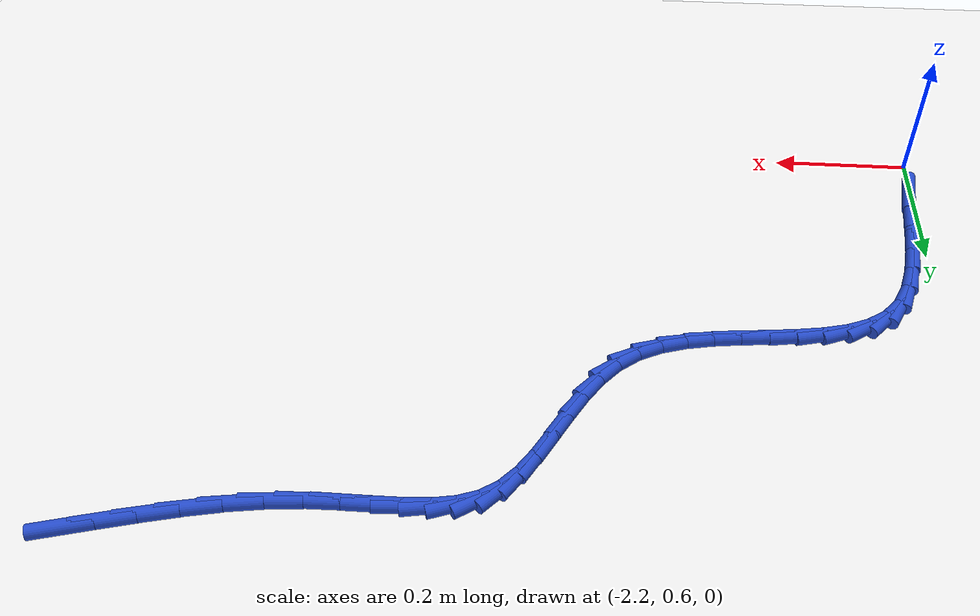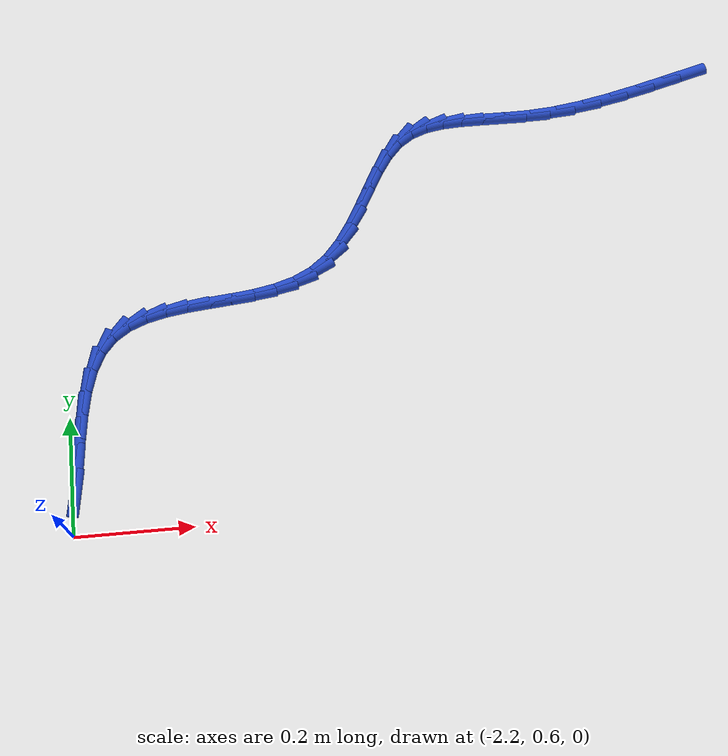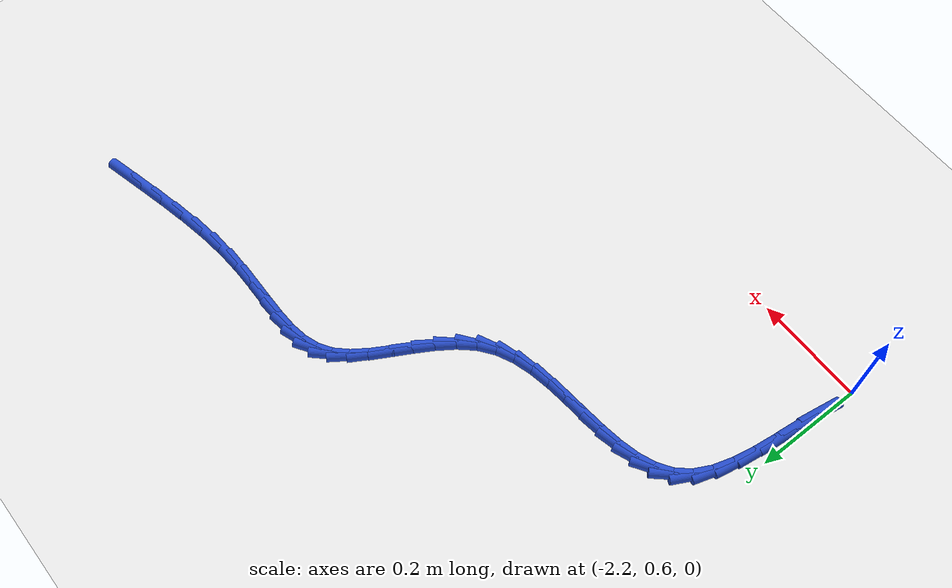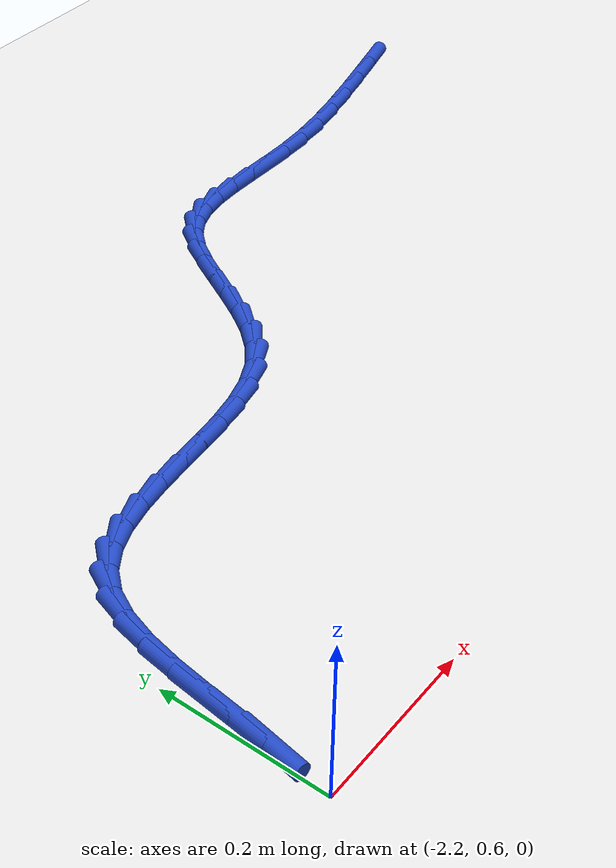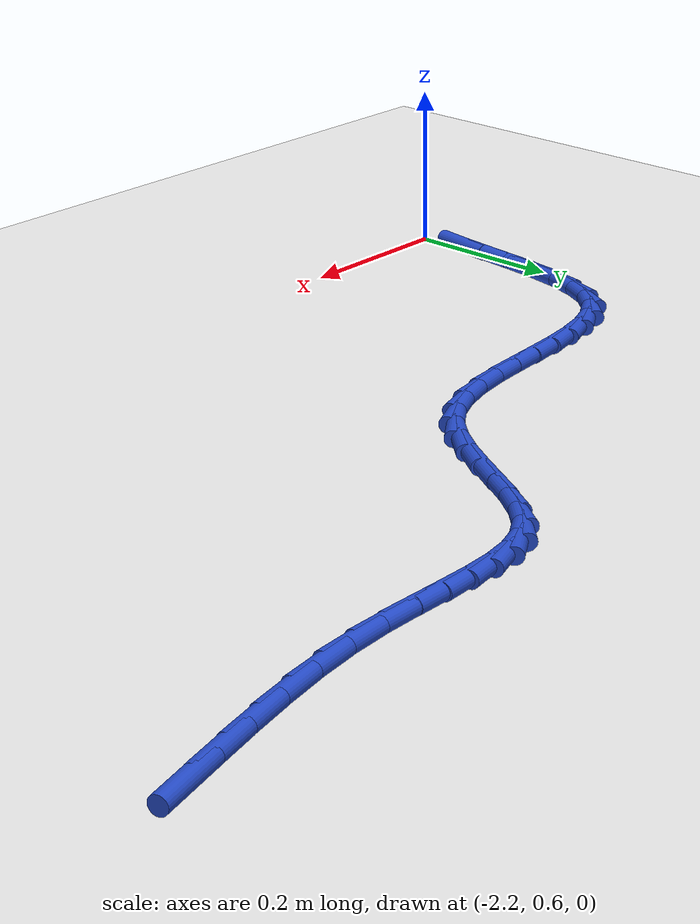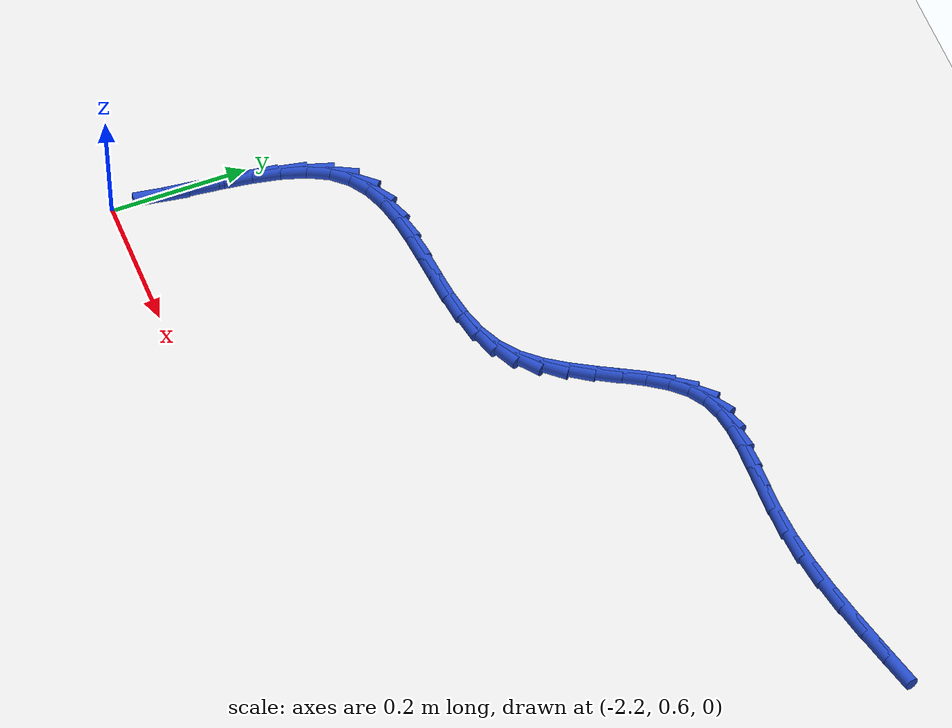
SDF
<sdf version="1.6">
 <world name="default">
  <model name="ground_plane">
   <static>1</static>
   <link name="link">
    <collision name="collision">
     <geometry><plane><normal>0 0 1</normal><size>100 100</size></plane></geometry>
     <surface><friction><ode><mu>100</mu><mu2>50</mu2></ode></friction></surface>
    </collision>
    <visual name="visual">
     <cast_shadows>0</cast_shadows>
     <geometry><plane><normal>0 0 1</normal><size>100 100</size></plane></geometry>
     <material>
      <script><uri>file://media/materials/scripts/gazebo.material</uri><name>Gazebo/WhiteGlow</name></script>
     </material>
    </visual>
   </link>
  </model>
  <model name="line">
   <link name="link_57">
    <pose>-1.0955781137871012 1.326104116847567 0.01 0 1.57 0.2501907083706787</pose>
    <collision name="collision">
     <geometry><cylinder><radius>0.01</radius><length>0.08</length></cylinder></geometry>
    </collision>
    <visual name="visual">
     <material>
      <script><name>Gazebo/Blue</name><uri>file://media/materials/scripts/gazebo.material</uri></script>
     </material>
     <geometry><cylinder><radius>0.01</radius><length>0.08</length></cylinder></geometry>
    </visual>
   </link>
   <link name="link_58">
    <pose>-1.1427759660105758 1.3140429382284595 0.01 0 1.57 0.24167244742331714</pose>
    <collision name="collision">
     <geometry><cylinder><radius>0.01</radius><length>0.08</length></cylinder></geometry>
    </collision>
    <visual name="visual">
     <material>
      <script><name>Gazebo/Blue</name><uri>file://media/materials/scripts/gazebo.material</uri></script>
     </material>
     <geometry><cylinder><radius>0.01</radius><length>0.08</length></cylinder></geometry>
    </visual>
   </link>
   <link name="link_59">
    <pose>-1.1913607355545226 1.3020672767218873 0.01 0 1.57 0.22050081717408146</pose>
    <collision name="collision">
     <geometry><cylinder><radius>0.01</radius><length>0.08</length></cylinder></geometry>
    </collision>
    <visual name="visual">
     <material>
      <script><name>Gazebo/Blue</name><uri>file://media/materials/scripts/gazebo.material</uri></script>
     </material>
     <geometry><cylinder><radius>0.01</radius><length>0.08</length></cylinder></geometry>
    </visual>
   </link>
   <link name="link_60">
    <pose>-1.2403435751611183 1.291088001419349 0.01 0 1.57 0.18531817152036642</pose>
    <collision name="collision">
     <geometry><cylinder><radius>0.01</radius><length>0.08</length></cylinder></geometry>
    </collision>
    <visual name="visual">
     <material>
      <script><name>Gazebo/Blue</name><uri>file://media/materials/scripts/gazebo.material</uri></script>
     </material>
     <geometry><cylinder><radius>0.01</radius><length>0.08</length></cylinder></geometry>
    </visual>
   </link>
   <link name="link_61">
    <pose>-1.288735637572541 1.2820159814123426 0.01 0 1.57 0.1328083670905106</pose>
    <collision name="collision">
     <geometry><cylinder><radius>0.01</radius><length>0.08</length></cylinder></geometry>
    </collision>
    <visual name="visual">
     <material>
      <script><name>Gazebo/Blue</name><uri>file://media/materials/scripts/gazebo.material</uri></script>
     </material>
     <geometry><cylinder><radius>0.01</radius><length>0.08</length></cylinder></geometry>
    </visual>
   </link>
   <link name="link_62">
    <pose>-1.3355480755309672 1.2757620857923657 0.01 0 1.57 0.06440131818322936</pose>
    <collision name="collision">
     <geometry><cylinder><radius>0.01</radius><length>0.08</length></cylinder></geometry>
    </collision>
    <visual name="visual">
     <material>
      <script><name>Gazebo/Blue</name><uri>file://media/materials/scripts/gazebo.material</uri></script>
     </material>
     <geometry><cylinder><radius>0.01</radius><length>0.08</length></cylinder></geometry>
    </visual>
   </link>
   <link name="link_63">
    <pose>-1.379924092855706 1.2729002541758936 0.01 0 1.57 0.010593005569473775</pose>
    <collision name="collision">
     <geometry><cylinder><radius>0.01</radius><length>0.08</length></cylinder></geometry>
    </collision>
    <visual name="visual">
     <material>
      <script><name>Gazebo/Blue</name><uri>file://media/materials/scripts/gazebo.material</uri></script>
     </material>
     <geometry><cylinder><radius>0.01</radius><length>0.08</length></cylinder></geometry>
    </visual>
   </link>
   <link name="link_64">
    <pose>-1.4216127296190673 1.2724586296958642 0.01 0 1.57 -0.01448078470729559</pose>
    <collision name="collision">
     <geometry><cylinder><radius>0.01</radius><length>0.08</length></cylinder></geometry>
    </collision>
    <visual name="visual">
     <material>
      <script><name>Gazebo/Blue</name><uri>file://media/materials/scripts/gazebo.material</uri></script>
     </material>
     <geometry><cylinder><radius>0.01</radius><length>0.08</length></cylinder></geometry>
    </visual>
   </link>
   <link name="link_65">
    <pose>-1.4605366632716323 1.2730223182001337 0.01 0 1.57 -0.0042699918529151525</pose>
    <collision name="collision">
     <geometry><cylinder><radius>0.01</radius><length>0.08</length></cylinder></geometry>
    </collision>
    <visual name="visual">
     <material>
      <script><name>Gazebo/Blue</name><uri>file://media/materials/scripts/gazebo.material</uri></script>
     </material>
     <geometry><cylinder><radius>0.01</radius><length>0.08</length></cylinder></geometry>
    </visual>
   </link>
   <link name="link_66">
    <pose>-1.4966185857201906 1.2731763886514078 0.01 0 1.57 0.05032982186870994</pose>
    <collision name="collision">
     <geometry><cylinder><radius>0.01</radius><length>0.08</length></cylinder></geometry>
    </collision>
    <visual name="visual">
     <material>
      <script><name>Gazebo/Blue</name><uri>file://media/materials/scripts/gazebo.material</uri></script>
     </material>
     <geometry><cylinder><radius>0.01</radius><length>0.08</length></cylinder></geometry>
    </visual>
   </link>
   <link name="link_67">
    <pose>-1.5297811888715336 1.2715059100123953 0.01 0 1.57 0.1613498733237581</pose>
    <collision name="collision">
     <geometry><cylinder><radius>0.01</radius><length>0.08</length></cylinder></geometry>
    </collision>
    <visual name="visual">
     <material>
      <script><name>Gazebo/Blue</name><uri>file://media/materials/scripts/gazebo.material</uri></script>
     </material>
     <geometry><cylinder><radius>0.01</radius><length>0.08</length></cylinder></geometry>
    </visual>
   </link>
   <link name="link_68">
    <pose>-1.5599471646324496 1.2665959512458016 0.01 0 1.57 0.33937379429327746</pose>
    <collision name="collision">
     <geometry><cylinder><radius>0.01</radius><length>0.08</length></cylinder></geometry>
    </collision>
    <visual name="visual">
     <material>
      <script><name>Gazebo/Blue</name><uri>file://media/materials/scripts/gazebo.material</uri></script>
     </material>
     <geometry><cylinder><radius>0.01</radius><length>0.08</length></cylinder></geometry>
    </visual>
   </link>
   <link name="link_69">
    <pose>-1.587039204909731 1.2570315813143356 0.01 0 1.57 0.5784412563058767</pose>
    <collision name="collision">
     <geometry><cylinder><radius>0.01</radius><length>0.08</length></cylinder></geometry>
    </collision>
    <visual name="visual">
     <material>
      <script><name>Gazebo/Blue</name><uri>file://media/materials/scripts/gazebo.material</uri></script>
     </material>
     <geometry><cylinder><radius>0.01</radius><length>0.08</length></cylinder></geometry>
    </visual>
   </link>
   <link name="link_70">
    <pose>-1.6109804791615945 1.2413992964644953 0.01 0 1.57 0.8165259031302108</pose>
    <collision name="collision">
     <geometry><cylinder><radius>0.01</radius><length>0.08</length></cylinder></geometry>
    </collision>
    <visual name="visual">
     <material>
      <script><name>Gazebo/Blue</name><uri>file://media/materials/scripts/gazebo.material</uri></script>
     </material>
     <geometry><cylinder><radius>0.01</radius><length>0.08</length></cylinder></geometry>
    </visual>
   </link>
   <link name="link_71">
    <pose>-1.631957814318917 1.2190736002984435 0.01 0 1.57 0.9694953390256713</pose>
    <collision name="collision">
     <geometry><cylinder><radius>0.01</radius><length>0.08</length></cylinder></geometry>
    </collision>
    <visual name="visual">
     <material>
      <script><name>Gazebo/Blue</name><uri>file://media/materials/scripts/gazebo.material</uri></script>
     </material>
     <geometry><cylinder><radius>0.01</radius><length>0.08</length></cylinder></geometry>
    </visual>
   </link>
   <link name="link_72">
    <pose>-1.6508587288719268 1.191523191197836 0.01 0 1.57 1.0483859424237836</pose>
    <collision name="collision">
     <geometry><cylinder><radius>0.01</radius><length>0.08</length></cylinder></geometry>
    </collision>
    <visual name="visual">
     <material>
      <script><name>Gazebo/Blue</name><uri>file://media/materials/scripts/gazebo.material</uri></script>
     </material>
     <geometry><cylinder><radius>0.01</radius><length>0.08</length></cylinder></geometry>
    </visual>
   </link>
   <link name="link_73">
    <pose>-1.6686858490121554 1.1605607961599655 0.01 0 1.57 1.0715667799128519</pose>
    <collision name="collision">
     <geometry><cylinder><radius>0.01</radius><length>0.08</length></cylinder></geometry>
    </collision>
    <visual name="visual">
     <material>
      <script><name>Gazebo/Blue</name><uri>file://media/materials/scripts/gazebo.material</uri></script>
     </material>
     <geometry><cylinder><radius>0.01</radius><length>0.08</length></cylinder></geometry>
    </visual>
   </link>
   <link name="link_74">
    <pose>-1.686441800931135 1.1279991421821252 0.01 0 1.57 1.0469384709427685</pose>
    <collision name="collision">
     <geometry><cylinder><radius>0.01</radius><length>0.08</length></cylinder></geometry>
    </collision>
    <visual name="visual">
     <material>
      <script><name>Gazebo/Blue</name><uri>file://media/materials/scripts/gazebo.material</uri></script>
     </material>
     <geometry><cylinder><radius>0.01</radius><length>0.08</length></cylinder></geometry>
    </visual>
   </link>
   <link name="link_75">
    <pose>-1.705129210820397 1.0956509562616075 0.01 0 1.57 0.9735623841203482</pose>
    <collision name="collision">
     <geometry><cylinder><radius>0.01</radius><length>0.08</length></cylinder></geometry>
    </collision>
    <visual name="visual">
     <material>
      <script><name>Gazebo/Blue</name><uri>file://media/materials/scripts/gazebo.material</uri></script>
     </material>
     <geometry><cylinder><radius>0.01</radius><length>0.08</length></cylinder></geometry>
    </visual>
   </link>
   <link name="link_76">
    <pose>-1.7257507048714738 1.0653289653957045 0.01 0 1.57 0.8437807804576547</pose>
    <collision name="collision">
     <geometry><cylinder><radius>0.01</radius><length>0.08</length></cylinder></geometry>
    </collision>
    <visual name="visual">
     <material>
      <script><name>Gazebo/Blue</name><uri>file://media/materials/scripts/gazebo.material</uri></script>
     </material>
     <geometry><cylinder><radius>0.01</radius><length>0.08</length></cylinder></geometry>
    </visual>
   </link>
   <link name="link_77">
    <pose>-1.7493089092758973 1.038845896581709 0.01 0 1.57 0.6500954229596967</pose>
    <collision name="collision">
     <geometry><cylinder><radius>0.01</radius><length>0.08</length></cylinder></geometry>
    </collision>
    <visual name="visual">
     <material>
      <script><name>Gazebo/Blue</name><uri>file://media/materials/scripts/gazebo.material</uri></script>
     </material>
     <geometry><cylinder><radius>0.01</radius><length>0.08</length></cylinder></geometry>
    </visual>
   </link>
   <link name="link_78">
    <pose>-1.7767740227380642 1.0179626608127967 0.01 0 1.57 0.443031462160235</pose>
    <collision name="collision">
     <geometry><cylinder><radius>0.01</radius><length>0.08</length></cylinder></geometry>
    </collision>
    <visual name="visual">
     <material>
      <script><name>Gazebo/Blue</name><uri>file://media/materials/scripts/gazebo.material</uri></script>
     </material>
     <geometry><cylinder><radius>0.01</radius><length>0.08</length></cylinder></geometry>
    </visual>
   </link>
   <link name="link_79">
    <pose>-1.8082363230159968 1.0030341400799527 0.01 0 1.57 0.28558347721840593</pose>
    <collision name="collision">
     <geometry><cylinder><radius>0.01</radius><length>0.08</length></cylinder></geometry>
    </collision>
    <visual name="visual">
     <material>
      <script><name>Gazebo/Blue</name><uri>file://media/materials/scripts/gazebo.material</uri></script>
     </material>
     <geometry><cylinder><radius>0.01</radius><length>0.08</length></cylinder></geometry>
    </visual>
   </link>
   <link name="link_80">
    <pose>-1.8428245207007388 0.992878724567831 0.01 0 1.57 0.1785923264379895</pose>
    <collision name="collision">
     <geometry><cylinder><radius>0.01</radius><length>0.08</length></cylinder></geometry>
    </collision>
    <visual name="visual">
     <material>
      <script><name>Gazebo/Blue</name><uri>file://media/materials/scripts/gazebo.material</uri></script>
     </material>
     <geometry><cylinder><radius>0.01</radius><length>0.08</length></cylinder></geometry>
    </visual>
   </link>
   <link name="link_81">
    <pose>-1.87961852933827 0.9862368314785498 0.01 0 1.57 0.11472468782691374</pose>
    <collision name="collision">
     <geometry><cylinder><radius>0.01</radius><length>0.08</length></cylinder></geometry>
    </collision>
    <visual name="visual">
     <material>
      <script><name>Gazebo/Blue</name><uri>file://media/materials/scripts/gazebo.material</uri></script>
     </material>
     <geometry><cylinder><radius>0.01</radius><length>0.08</length></cylinder></geometry>
    </visual>
   </link>
   <link name="link_82">
    <pose>-1.917698262474568 0.9818488780142284 0.01 0 1.57 0.08804242348037937</pose>
    <collision name="collision">
     <geometry><cylinder><radius>0.01</radius><length>0.08</length></cylinder></geometry>
    </collision>
    <visual name="visual">
     <material>
      <script><name>Gazebo/Blue</name><uri>file://media/materials/scripts/gazebo.material</uri></script>
     </material>
     <geometry><cylinder><radius>0.01</radius><length>0.08</length></cylinder></geometry>
    </visual>
   </link>
   <link name="link_83">
    <pose>-1.9561436336556115 0.9784552813769848 0.01 0 1.57 0.096263528473818</pose>
    <collision name="collision">
     <geometry><cylinder><radius>0.01</radius><length>0.08</length></cylinder></geometry>
    </collision>
    <visual name="visual">
     <material>
      <script><name>Gazebo/Blue</name><uri>file://media/materials/scripts/gazebo.material</uri></script>
     </material>
     <geometry><cylinder><radius>0.01</radius><length>0.08</length></cylinder></geometry>
    </visual>
   </link>
   <link name="link_84">
    <pose>-1.9940345564273791 0.9747964587689383 0.01 0 1.57 0.1413935209910972</pose>
    <collision name="collision">
     <geometry><cylinder><radius>0.01</radius><length>0.08</length></cylinder></geometry>
    </collision>
    <visual name="visual">
     <material>
      <script><name>Gazebo/Blue</name><uri>file://media/materials/scripts/gazebo.material</uri></script>
     </material>
     <geometry><cylinder><radius>0.01</radius><length>0.08</length></cylinder></geometry>
    </visual>
   </link>
   <link name="link_85">
    <pose>-2.03045094433585 0.9696128273922072 0.01 0 1.57 0.2300571821587137</pose>
    <collision name="collision">
     <geometry><cylinder><radius>0.01</radius><length>0.08</length></cylinder></geometry>
    </collision>
    <visual name="visual">
     <material>
      <script><name>Gazebo/Blue</name><uri>file://media/materials/scripts/gazebo.material</uri></script>
     </material>
     <geometry><cylinder><radius>0.01</radius><length>0.08</length></cylinder></geometry>
    </visual>
   </link>
   <link name="link_86">
    <pose>-2.0644727109270025 0.9616448044489108 0.01 0 1.57 0.37288016471356716</pose>
    <collision name="collision">
     <geometry><cylinder><radius>0.01</radius><length>0.08</length></cylinder></geometry>
    </collision>
    <visual name="visual">
     <material>
      <script><name>Gazebo/Blue</name><uri>file://media/materials/scripts/gazebo.material</uri></script>
     </material>
     <geometry><cylinder><radius>0.01</radius><length>0.08</length></cylinder></geometry>
    </visual>
   </link>
   <link name="link_87">
    <pose>-2.0951797697468146 0.9496328071411674 0.01 0 1.57 0.5792532947712956</pose>
    <collision name="collision">
     <geometry><cylinder><radius>0.01</radius><length>0.08</length></cylinder></geometry>
    </collision>
    <visual name="visual">
     <material>
      <script><name>Gazebo/Blue</name><uri>file://media/materials/scripts/gazebo.material</uri></script>
     </material>
     <geometry><cylinder><radius>0.01</radius><length>0.08</length></cylinder></geometry>
    </visual>
   </link>
   <link name="link_88">
    <pose>-2.1216520343412655 0.9323172526710958 0.01 0 1.57 0.8419119033201201</pose>
    <collision name="collision">
     <geometry><cylinder><radius>0.01</radius><length>0.08</length></cylinder></geometry>
    </collision>
    <visual name="visual">
     <material>
      <script><name>Gazebo/Blue</name><uri>file://media/materials/scripts/gazebo.material</uri></script>
     </material>
     <geometry><cylinder><radius>0.01</radius><length>0.08</length></cylinder></geometry>
    </visual>
   </link>
   <link name="link_89">
    <pose>-2.1429712740303697 0.9084411314728966 0.01 0 1.57 1.0981361425527398</pose>
    <collision name="collision">
     <geometry><cylinder><radius>0.01</radius><length>0.08</length></cylinder></geometry>
    </collision>
    <visual name="visual">
     <material>
      <script><name>Gazebo/Blue</name><uri>file://media/materials/scripts/gazebo.material</uri></script>
     </material>
     <geometry><cylinder><radius>0.01</radius><length>0.08</length></cylinder></geometry>
    </visual>
   </link>
   <link name="link_90">
    <pose>-2.1587795535656187 0.8775243443974059 0.01 0 1.57 1.2715475951496</pose>
    <collision name="collision">
     <geometry><cylinder><radius>0.01</radius><length>0.08</length></cylinder></geometry>
    </collision>
    <visual name="visual">
     <material>
      <script><name>Gazebo/Blue</name><uri>file://media/materials/scripts/gazebo.material</uri></script>
     </material>
     <geometry><cylinder><radius>0.01</radius><length>0.08</length></cylinder></geometry>
    </visual>
   </link>
   <link name="link_91">
    <pose>-2.170063053528514 0.8409505547515486 0.01 0 1.57 1.3774895222110142</pose>
    <collision name="collision">
     <geometry><cylinder><radius>0.01</radius><length>0.08</length></cylinder></geometry>
    </collision>
    <visual name="visual">
     <material>
      <script><name>Gazebo/Blue</name><uri>file://media/materials/scripts/gazebo.material</uri></script>
     </material>
     <geometry><cylinder><radius>0.01</radius><length>0.08</length></cylinder></geometry>
    </visual>
   </link>
   <link name="link_92">
    <pose>-2.1780053474012906 0.8003771325193532 0.01 0 1.57 1.43681256180874</pose>
    <collision name="collision">
     <geometry><cylinder><radius>0.01</radius><length>0.08</length></cylinder></geometry>
    </collision>
    <visual name="visual">
     <material>
      <script><name>Gazebo/Blue</name><uri>file://media/materials/scripts/gazebo.material</uri></script>
     </material>
     <geometry><cylinder><radius>0.01</radius><length>0.08</length></cylinder></geometry>
    </visual>
   </link>
   <link name="link_93">
    <pose>-2.1837900086661803 0.7574614476848505 0.01 0 1.57 1.460907348324873</pose>
    <collision name="collision">
     <geometry><cylinder><radius>0.01</radius><length>0.08</length></cylinder></geometry>
    </collision>
    <visual name="visual">
     <material>
      <script><name>Gazebo/Blue</name><uri>file://media/materials/scripts/gazebo.material</uri></script>
     </material>
     <geometry><cylinder><radius>0.01</radius><length>0.08</length></cylinder></geometry>
    </visual>
   </link>
   <link name="link_94">
    <pose>-2.188600610805418 0.7138608702320689 0.01 0 1.57 1.4535708295935443</pose>
    <collision name="collision">
     <geometry><cylinder><radius>0.01</radius><length>0.08</length></cylinder></geometry>
    </collision>
    <visual name="visual">
     <material>
      <script><name>Gazebo/Blue</name><uri>file://media/materials/scripts/gazebo.material</uri></script>
     </material>
     <geometry><cylinder><radius>0.01</radius><length>0.08</length></cylinder></geometry>
    </visual>
   </link>
   <link name="link_95">
    <pose>-2.193620727301236 0.6712327701450391 0.01 0 1.57 1.4118123844194383</pose>
    <collision name="collision">
     <geometry><cylinder><radius>0.01</radius><length>0.08</length></cylinder></geometry>
    </collision>
    <visual name="visual">
     <material>
      <script><name>Gazebo/Blue</name><uri>file://media/materials/scripts/gazebo.material</uri></script>
     </material>
     <geometry><cylinder><radius>0.01</radius><length>0.08</length></cylinder></geometry>
    </visual>
   </link>
  </model>
 </world>
</sdf>
